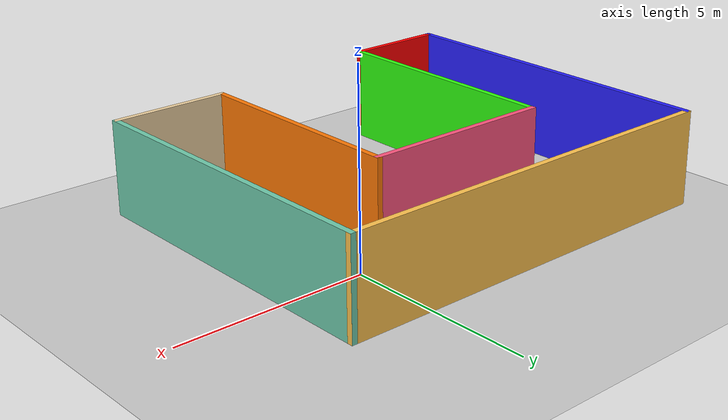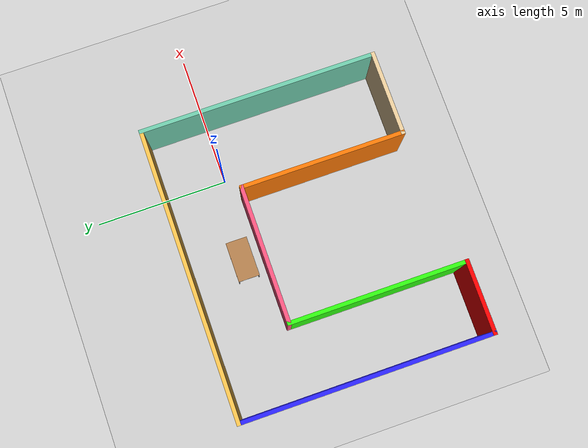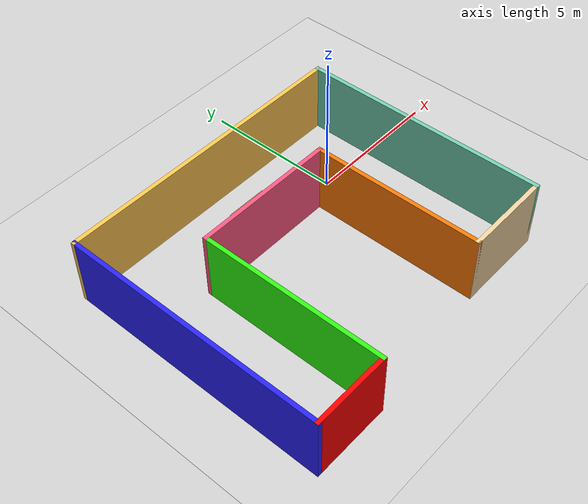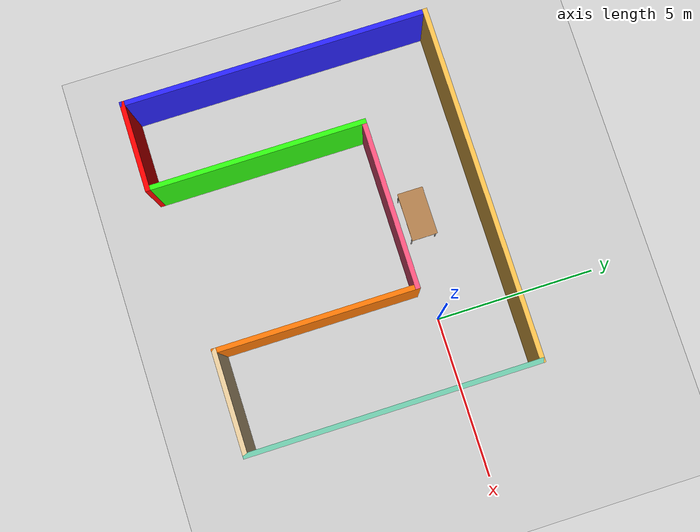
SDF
<sdf version="1.6">
 <world name="default">
  <model name="ground_plane">
   <static>1</static>
   <link name="link">
    <collision name="collision">
     <geometry><plane><normal>0 0 1</normal><size>100 100</size></plane></geometry>
     <surface>
      <contact><collide_bitmask>65535</collide_bitmask></contact>
      <friction><ode><mu>100</mu><mu2>50</mu2></ode></friction>
     </surface>
    </collision>
    <visual name="visual">
     <cast_shadows>0</cast_shadows>
     <geometry><plane><normal>0 0 1</normal><size>100 100</size></plane></geometry>
     <material>
      <script><uri>file://media/materials/scripts/gazebo.material</uri><name>Gazebo/Grey</name></script>
     </material>
    </visual>
   </link>
  </model>
  <model name="Alaa">
   <pose>-3.24733 -2.38003 0 0 -0 0</pose>
   <link name="Wall_0">
    <collision name="Wall_0_Collision">
     <geometry><box><size>6.25 0.15 2.5</size></box></geometry>
     <pose>0 0 1.25 0 -0 0</pose>
    </collision>
    <visual name="Wall_0_Visual">
     <pose>0 0 1.25 0 -0 0</pose>
     <geometry><box><size>6.25 0.15 2.5</size></box></geometry>
     <material>
      <script><uri>file://media/materials/scripts/gazebo.material</uri><name>Gazebo/Grey</name></script>
      <ambient>0.996078 0.47451 0.0196078 1</ambient>
     </material>
     <meta><layer>0</layer></meta>
    </visual>
    <pose>2.325 -1.125 0 0 0 -1.5708</pose>
   </link>
   <link name="Wall_1">
    <collision name="Wall_1_Collision">
     <geometry><box><size>3.25 0.15 2.5</size></box></geometry>
     <pose>0 0 1.25 0 -0 0</pose>
    </collision>
    <visual name="Wall_1_Visual">
     <pose>0 0 1.25 0 -0 0</pose>
     <geometry><box><size>3.25 0.15 2.5</size></box></geometry>
     <material>
      <script><uri>file://media/materials/scripts/gazebo.material</uri><name>Gazebo/Grey</name></script>
      <ambient>0.921569 0.807843 0.615686 1</ambient>
     </material>
     <meta><layer>0</layer></meta>
    </visual>
    <pose>3.875 -4.175 0 0 -0 0</pose>
   </link>
   <link name="Wall_11">
    <collision name="Wall_11_Collision">
     <geometry><box><size>5.25 0.15 2.5</size></box></geometry>
     <pose>0 0 1.25 0 -0 0</pose>
    </collision>
    <visual name="Wall_11_Visual">
     <pose>0 0 1.25 0 -0 0</pose>
     <geometry><box><size>5.25 0.15 2.5</size></box></geometry>
     <material>
      <script><uri>file://media/materials/scripts/gazebo.material</uri><name>Gazebo/Grey</name></script>
      <ambient>1 0.333333 0.498039 1</ambient>
     </material>
     <meta><layer>0</layer></meta>
    </visual>
    <pose>-0.225 1.925 0 0 -0 3.14159</pose>
   </link>
   <link name="Wall_12">
    <collision name="Wall_12_Collision">
     <geometry><box><size>6.75 0.15 2.5</size></box></geometry>
     <pose>0 0 1.25 0 -0 0</pose>
    </collision>
    <visual name="Wall_12_Visual">
     <pose>0 0 1.25 0 -0 0</pose>
     <geometry><box><size>6.75 0.15 2.5</size></box></geometry>
     <material>
      <script><uri>file://media/materials/scripts/gazebo.material</uri><name>Gazebo/Grey</name></script>
      <ambient>0.188235 1 0.0627451 1</ambient>
     </material>
     <meta><layer>0</layer></meta>
    </visual>
    <pose>-2.775 -1.375 0 0 0 -1.5708</pose>
   </link>
   <link name="Wall_14">
    <collision name="Wall_14_Collision">
     <geometry><box><size>2.8 0.15 2.5</size></box></geometry>
     <pose>0 0 1.25 0 -0 0</pose>
    </collision>
    <visual name="Wall_14_Visual">
     <pose>0 0 1.25 0 -0 0</pose>
     <geometry><box><size>2.8 0.15 2.5</size></box></geometry>
     <material>
      <script><uri>file://media/materials/scripts/gazebo.material</uri><name>Gazebo/Grey</name></script>
      <ambient>1 0 0 1</ambient>
     </material>
     <meta><layer>0</layer></meta>
    </visual>
    <pose>-4.1 -4.675 0 0 -0 3.14159</pose>
   </link>
   <link name="Wall_2">
    <collision name="Wall_2_Collision">
     <geometry><box><size>9 0.15 2.5</size></box></geometry>
     <pose>0 0 1.25 0 -0 0</pose>
    </collision>
    <visual name="Wall_2_Visual">
     <pose>0 0 1.25 0 -0 0</pose>
     <geometry><box><size>9 0.15 2.5</size></box></geometry>
     <material>
      <script><uri>file://media/materials/scripts/gazebo.material</uri><name>Gazebo/Grey</name></script>
      <ambient>0.435294 0.796078 0.67451 1</ambient>
     </material>
     <meta><layer>0</layer></meta>
    </visual>
    <pose>5.425 0.25 0 0 -0 1.5708</pose>
   </link>
   <link name="Wall_3">
    <collision name="Wall_3_Collision">
     <geometry><box><size>11 0.15 2.5</size></box></geometry>
     <pose>0 0 1.25 0 -0 0</pose>
    </collision>
    <visual name="Wall_3_Visual">
     <pose>0 0 1.25 0 -0 0</pose>
     <geometry><box><size>11 0.15 2.5</size></box></geometry>
     <material>
      <script><uri>file://media/materials/scripts/gazebo.material</uri><name>Gazebo/Grey</name></script>
      <ambient>1 0.764706 0.305882 1</ambient>
     </material>
     <meta><layer>0</layer></meta>
    </visual>
    <pose>0 4.675 0 0 -0 3.14159</pose>
   </link>
   <link name="Wall_4">
    <collision name="Wall_4_Collision">
     <geometry><box><size>9.5 0.15 2.5</size></box></geometry>
     <pose>0 0 1.25 0 -0 0</pose>
    </collision>
    <visual name="Wall_4_Visual">
     <pose>0 0 1.25 0 -0 0</pose>
     <geometry><box><size>9.5 0.15 2.5</size></box></geometry>
     <material>
      <script><uri>file://media/materials/scripts/gazebo.material</uri><name>Gazebo/Grey</name></script>
      <ambient>0.160784 0.133333 1 1</ambient>
     </material>
     <meta><layer>0</layer></meta>
    </visual>
    <pose>-5.425 0 0 0 0 -1.5708</pose>
   </link>
   <static>1</static>
  </model>
  <model name="table">
   <static>1</static>
   <link name="link">
    <collision name="surface">
     <pose>0 0 1 0 -0 0</pose>
     <geometry><box><size>1.5 0.8 0.03</size></box></geometry>
     <surface><friction><ode><mu>0.6</mu><mu2>0.6</mu2></ode></friction></surface>
    </collision>
    <visual name="visual1">
     <pose>0 0 1 0 -0 0</pose>
     <geometry><box><size>1.5 0.8 0.03</size></box></geometry>
     <material>
      <script><uri>file://media/materials/scripts/gazebo.material</uri><name>Gazebo/Wood</name></script>
     </material>
    </visual>
    <collision name="front_left_leg">
     <pose>0.68 0.38 0.5 0 -0 0</pose>
     <geometry><cylinder><radius>0.02</radius><length>1</length></cylinder></geometry>
    </collision>
    <visual name="front_left_leg">
     <pose>0.68 0.38 0.5 0 -0 0</pose>
     <geometry><cylinder><radius>0.02</radius><length>1</length></cylinder></geometry>
     <material>
      <script><uri>file://media/materials/scripts/gazebo.material</uri><name>Gazebo/Grey</name></script>
     </material>
    </visual>
    <collision name="front_right_leg">
     <pose>0.68 -0.38 0.5 0 -0 0</pose>
     <geometry><cylinder><radius>0.02</radius><length>1</length></cylinder></geometry>
    </collision>
    <visual name="front_right_leg">
     <pose>0.68 -0.38 0.5 0 -0 0</pose>
     <geometry><cylinder><radius>0.02</radius><length>1</length></cylinder></geometry>
     <material>
      <script><uri>file://media/materials/scripts/gazebo.material</uri><name>Gazebo/Grey</name></script>
     </material>
    </visual>
    <collision name="back_right_leg">
     <pose>-0.68 -0.38 0.5 0 -0 0</pose>
     <geometry><cylinder><radius>0.02</radius><length>1</length></cylinder></geometry>
    </collision>
    <visual name="back_right_leg">
     <pose>-0.68 -0.38 0.5 0 -0 0</pose>
     <geometry><cylinder><radius>0.02</radius><length>1</length></cylinder></geometry>
     <material>
      <script><uri>file://media/materials/scripts/gazebo.material</uri><name>Gazebo/Grey</name></script>
     </material>
    </visual>
    <collision name="back_left_leg">
     <pose>-0.68 0.38 0.5 0 -0 0</pose>
     <geometry><cylinder><radius>0.02</radius><length>1</length></cylinder></geometry>
    </collision>
    <visual name="back_left_leg">
     <pose>-0.68 0.38 0.5 0 -0 0</pose>
     <geometry><cylinder><radius>0.02</radius><length>1</length></cylinder></geometry>
     <material>
      <script><uri>file://media/materials/scripts/gazebo.material</uri><name>Gazebo/Grey</name></script>
     </material>
    </visual>
   </link>
   <pose>-3.16729 0.324471 0 0 -0 0</pose>
  </model>
 </world>
</sdf>
